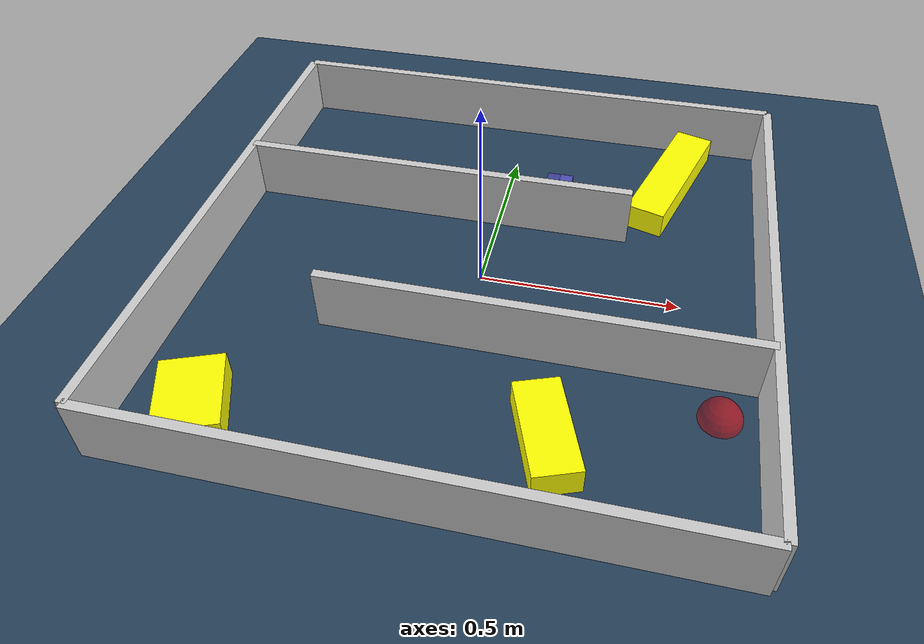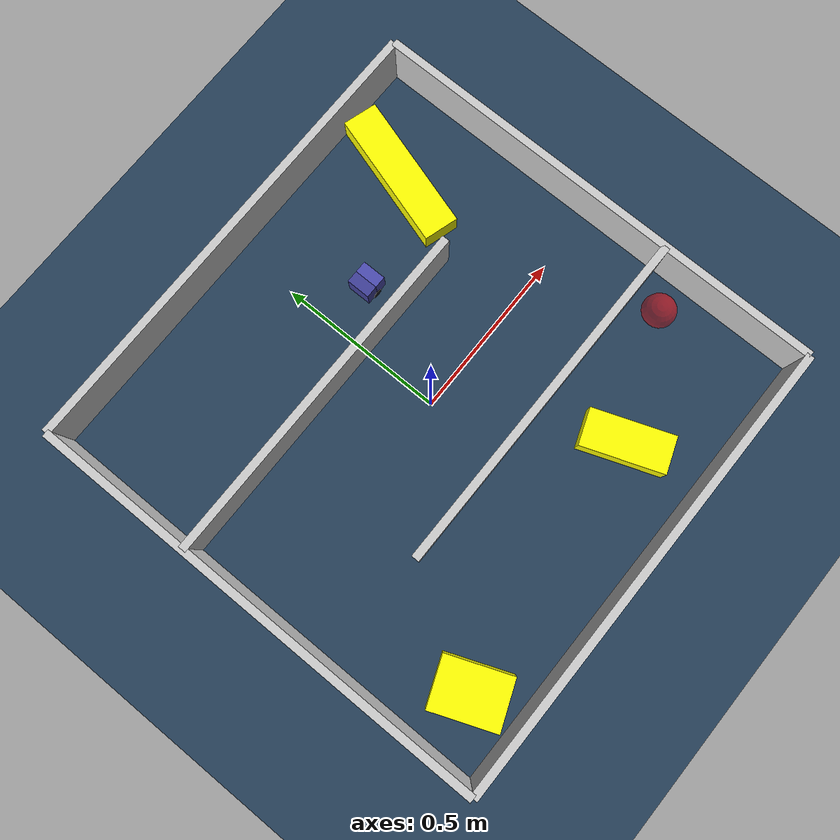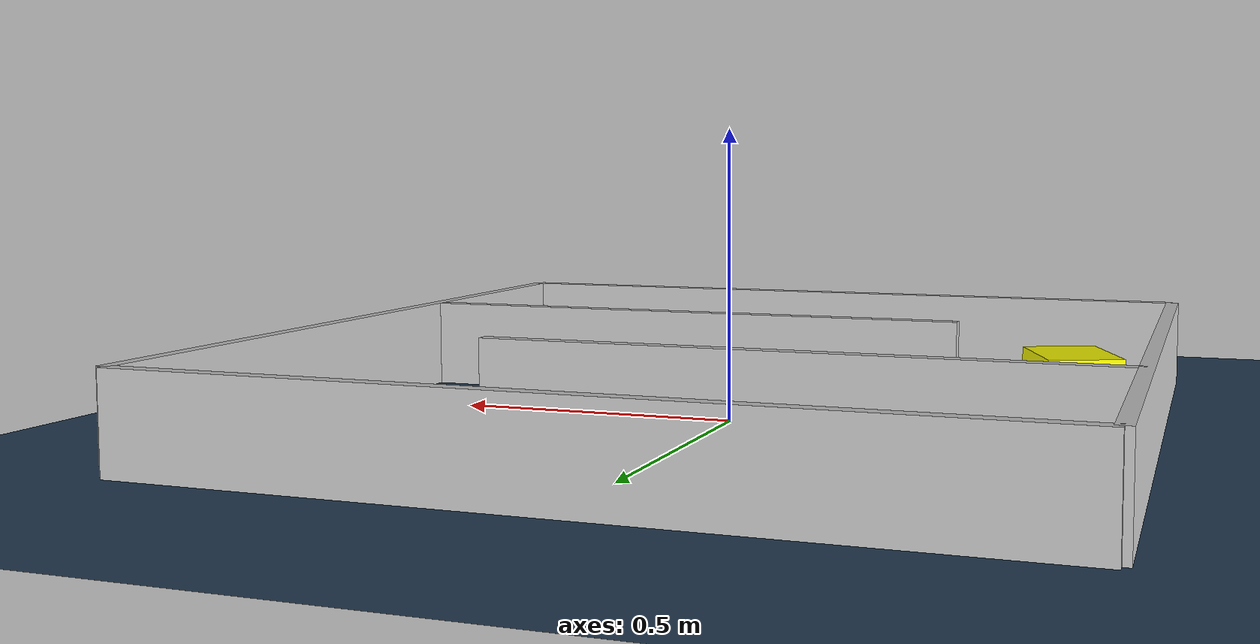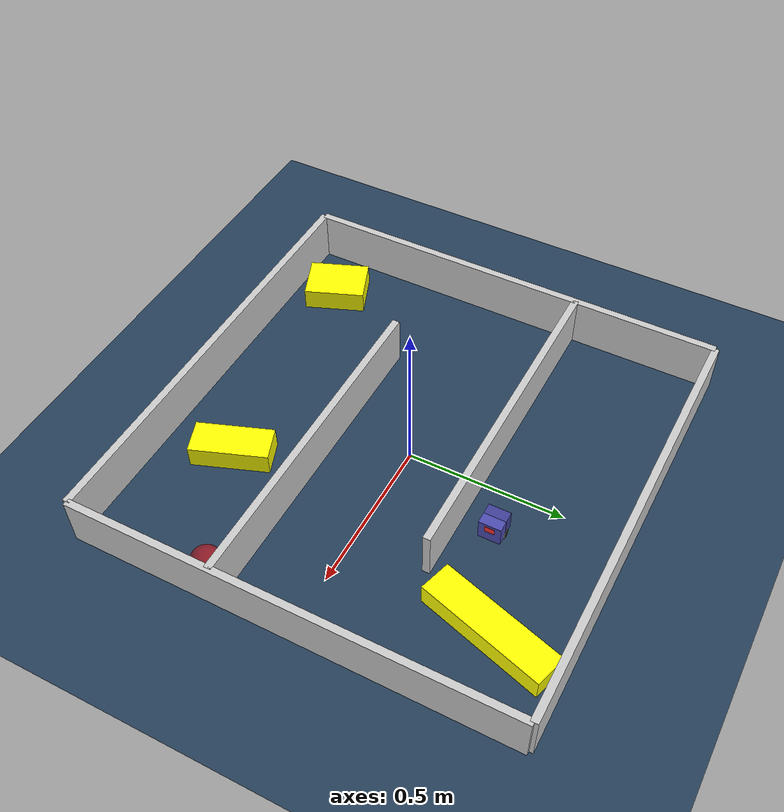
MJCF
<?xml version='1.0' encoding='utf-8'?>
<mujoco model="generated_environment">
  <option timestep="0.002" integrator="implicitfast" cone="elliptic" iterations="100" gravity="0 0 -9.81" />
  <default>
    <geom density="1" />
  </default>
  <asset>
    <texture builtin="gradient" height="3072" rgb1="0.3 0.5 0.7" rgb2="0 0 0" type="skybox" width="512" />
    <texture builtin="checker" height="300" mark="edge" markrgb="0.8 0.8 0.8" name="groundplane" rgb1="0.2 0.3 0.4" rgb2="0.1 0.2 0.3" type="2d" width="300" />
    <material name="groundplane" reflectance="0.2" texrepeat="5 5" texture="groundplane" texuniform="true" />
    <material name="robot" rgba="1.0 1.0 0.0 1.0" />
  </asset>
  <worldbody>
    <light dir="0 0 -1" directional="true" pos="0 0 1.5" />
    <geom condim="4" friction="0.5 0.005 0.001" material="groundplane" name="floor" size="0 0 0.05" type="plane" />
    <body name="walls">
      <geom name="wall_1" condim="4" pos="-0.699000 0.000000 0.080000" rgba="0.800000011920929 0.800000011920929 0.800000011920929 1.0" size="0.011650 0.699000 0.080000" type="box" />
      <geom name="wall_2" condim="4" pos="0.699000 0.000000 0.080000" rgba="0.800000011920929 0.800000011920929 0.800000011920929 1.0" size="0.011650 0.699000 0.080000" type="box" />
      <geom name="wall_3" condim="4" pos="0.000000 -0.699000 0.080000" rgba="0.800000011920929 0.800000011920929 0.800000011920929 1.0" size="0.699000 0.011650 0.080000" type="box" />
      <geom name="wall_4" condim="4" pos="0.000000 0.699000 0.080000" rgba="0.800000011920929 0.800000011920929 0.800000011920929 1.0" size="0.699000 0.011650 0.080000" type="box" />
      <geom name="wall_5" condim="4" pos="0.174750 -0.233000 0.080000" rgba="0.800000011920929 0.800000011920929 0.800000011920929 1.0" size="0.524250 0.011650 0.080000" type="box" />
      <geom name="wall_6" condim="4" pos="-0.174750 0.233000 0.080000" rgba="0.800000011920929 0.800000011920929 0.800000011920929 1.0" size="0.524250 0.011650 0.080000" type="box" />
    </body>
    <body name="car" pos="0.14500000000000013 0.34499999999999986 0.010000">
      <freejoint name="car_freejoint" />
      <inertial pos="0.000000 0 0.037500" mass="0.350000" diaginertia="0.000266 0.000266 0.000286" />
      <geom name="front_chassis_collision" type="box" pos="0.017500 0 0.037500" size="0.017500 0.035000 0.032500" rgba="0.3 0.3 0.7 1" />
      <geom name="rear_chassis_collision" type="box" pos="-0.017500 0 0.037500" size="0.017500 0.035000 0.032500" rgba="0.25 0.25 0.6 1" />
      <geom name="front_marker" type="box" pos="0.034000 0 0.050500" size="0.002000 0.015000 0.010000" rgba="1.0 0.2 0.2 1" contype="0" conaffinity="0" />
      <body name="rear_support_body" pos="-0.030000 0.000000 0.002500">
        <joint name="rear_caster_joint" type="ball" damping="0.0001" />
        <inertial pos="0 0 0" mass="0.025000" diaginertia="0.000001 0.000001 0.000001" />
        <geom name="rear_support" type="sphere" pos="0 0 0" size="0.002500" friction="0.000000 0.000000 0.000000" rgba="0.7 0.1 0.1 1" />
      </body>
      <body name="front_support_body" pos="0.030000 0.000000 0.002500">
        <joint name="front_caster_joint" type="ball" damping="0.0001" />
        <inertial pos="0 0 0" mass="0.025000" diaginertia="0.000001 0.000001 0.000001" />
        <geom name="front_support" type="sphere" pos="0 0 0" size="0.002500" friction="0.000000 0.000000 0.000000" rgba="0.1 0.7 0.1 1" />
      </body>
      <body name="left_wheel" pos="0.000000 0.037500 0.015000">
        <inertial pos="0 0 0" mass="0.050000" diaginertia="0.000003 0.000006 0.000003" />
        <joint name="left_wheel_joint" type="hinge" axis="0 1 0" />
        <geom name="left_wheel_collision" type="cylinder" size="0.015000 0.000500" euler="90 0 0" rgba="0.1 0.1 0.1 1" />
      </body>
      <body name="right_wheel" pos="0.000000 -0.037500 0.015000">
        <inertial pos="0 0 0" mass="0.050000" diaginertia="0.000003 0.000006 0.000003" />
        <joint name="right_wheel_joint" type="hinge" axis="0 1 0" />
        <geom name="right_wheel_collision" type="cylinder" size="0.015000 0.000500" euler="90 0 0" rgba="0.1 0.1 0.1 1" />
      </body>
    </body>
    <body name="obstacle_0_movable">
      <geom name="obstacle_0_movable" condim="4" pos="-0.5193424853649747 -0.553288572242197 0.035" euler="0 0 201.55185623161614" friction="0.0 0.005 0.001" rgba="1 1 0 1" size="0.07388155299815513 0.0984870299718464 0.035" type="box" mass="0.1" />
      <joint type="free" />
    </body>
    <body name="obstacle_1_movable">
      <geom name="obstacle_1_movable" condim="4" pos="0.44810978491724196 0.4754800248591087 0.035" euler="0 0 343.2092181848587" friction="0.0 0.005 0.001" rgba="1 1 0 1" size="0.05158362400243328 0.20513138914632834 0.035" type="box" mass="0.1" />
      <joint type="free" />
    </body>
    <body name="obstacle_2_movable">
      <geom name="obstacle_2_movable" condim="4" pos="0.24401847696996404 -0.47278251835178464 0.035" euler="0 0 20.357539714761273" friction="0.0 0.005 0.001" rgba="1 1 0 1" size="0.05456139691854019 0.12184042293066666 0.035" type="box" mass="0.1" />
      <joint type="free" />
    </body>
    <site name="goal" type="sphere" pos="0.6050000000000001 -0.32500000000000007 0.0" size="0.05" rgba="1 0 0 0.5" />
  </worldbody>
  <actuator>
    <velocity name="left_wheel_drive" joint="left_wheel_joint" ctrlrange="-25.000000 25.000000" kv="0.750000" forcerange="-0.300000 0.300000" />
    <velocity name="right_wheel_drive" joint="right_wheel_joint" ctrlrange="-25.000000 25.000000" kv="0.750000" forcerange="-0.300000 0.300000" />
  </actuator>
</mujoco>
